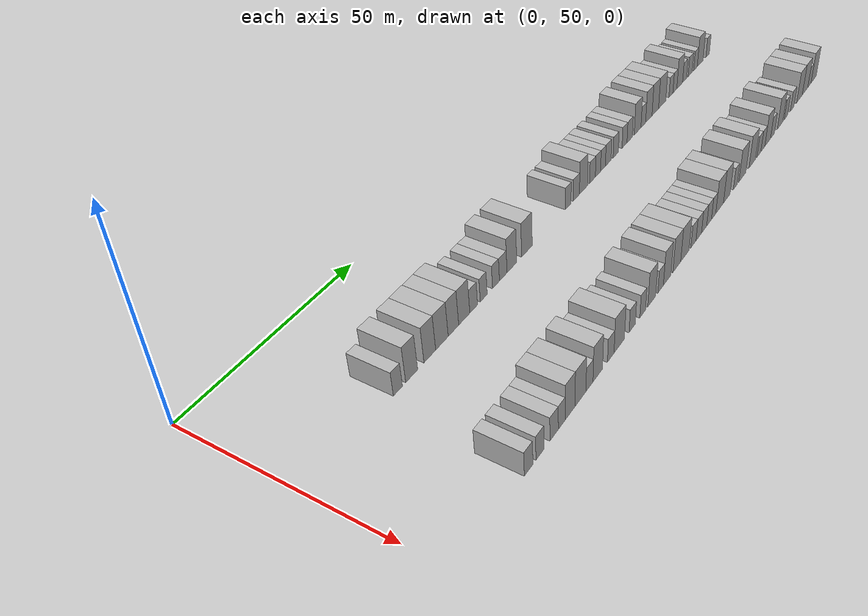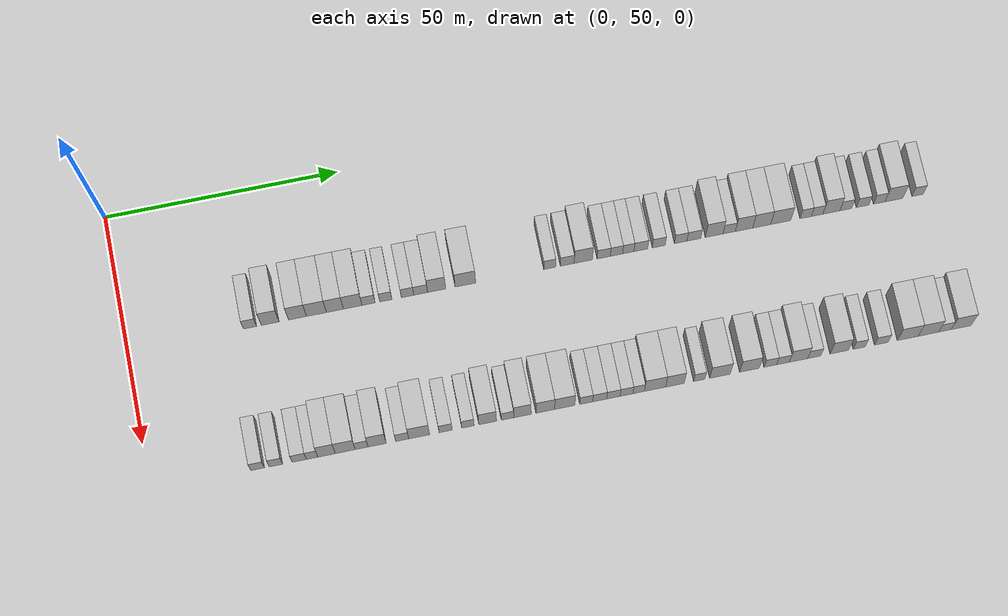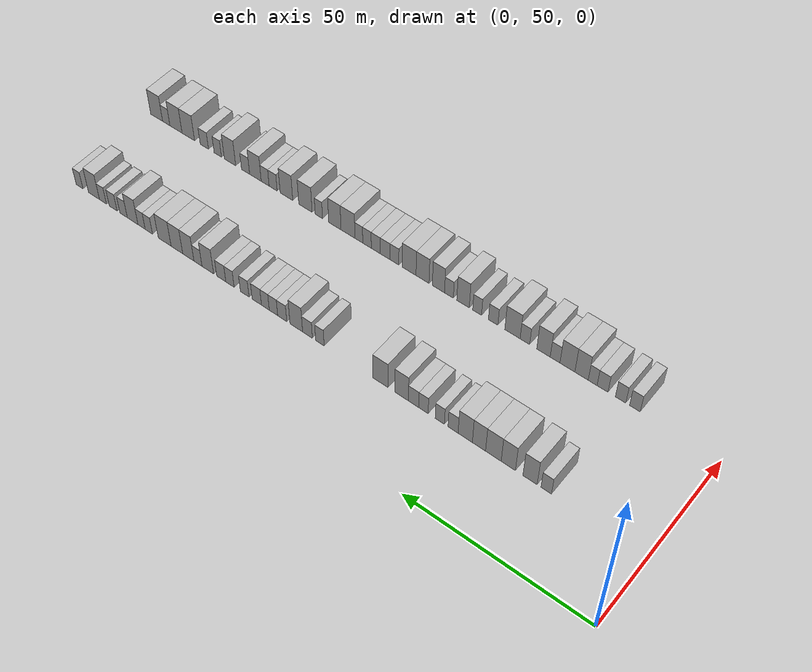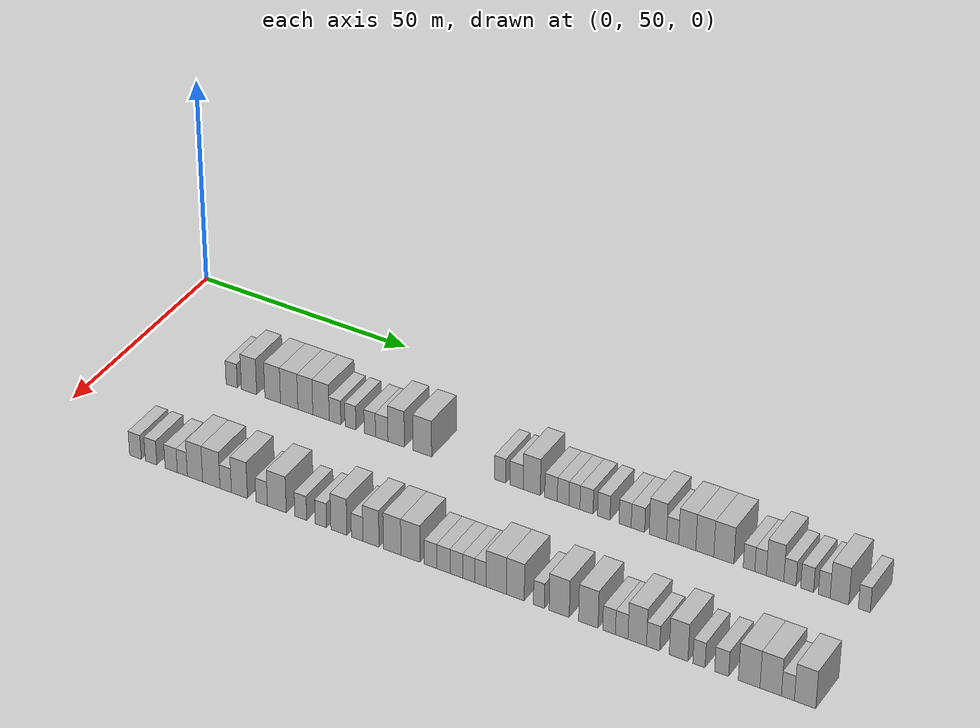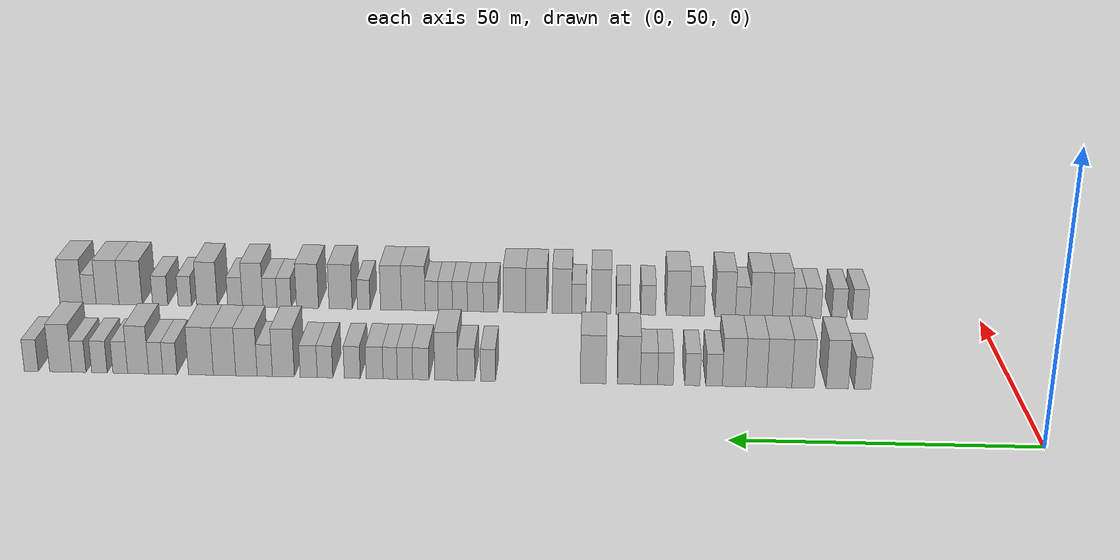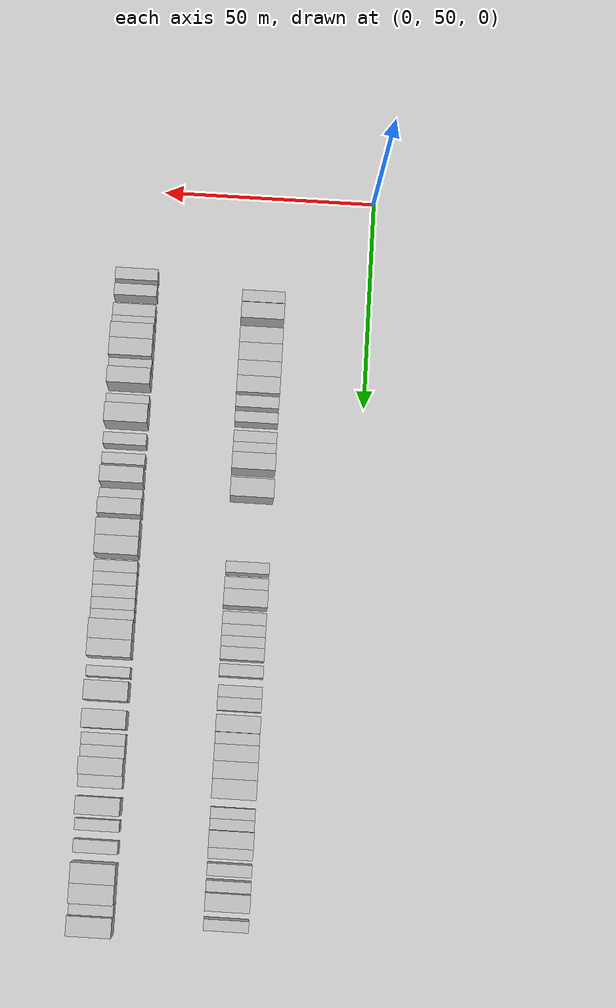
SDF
<sdf version="1.6">
 <world name="default">
  <model name="building_76">
   <static>1</static>
   <pose>25.0000 75.9710 0 0.000000 0.000000 0.000000</pose>
   <link name="link">
    <pose>0 0 3.00 0 0 0</pose>
    <collision name="collision"><geometry><box><size>10.0000 2.7708 6.0000</size></box></geometry></collision>
    <visual name="visual">
     <cast_shadows>0</cast_shadows>
     <geometry><box><size>10.0000 2.7708 6.0000</size></box></geometry>
     <material>
      <script>
       <uri>model://HANNAS_wall/materials/scripts</uri>
       <uri>model://HANNAS_wall/materials/textures</uri>
       <name>vrc/HANNAS_wall</name>
      </script>
     </material>
    </visual>
   </link>
  </model>
  <model name="building_77">
   <static>1</static>
   <pose>25.0000 80.2393 0 0.000000 0.000000 0.000000</pose>
   <link name="link">
    <pose>0 0 4.50 0 0 0</pose>
    <collision name="collision"><geometry><box><size>10.0000 3.7657 9.0000</size></box></geometry></collision>
    <visual name="visual">
     <cast_shadows>0</cast_shadows>
     <geometry><box><size>10.0000 3.7657 9.0000</size></box></geometry>
     <material>
      <script>
       <uri>model://HANNAS_wall/materials/scripts</uri>
       <uri>model://HANNAS_wall/materials/textures</uri>
       <name>vrc/HANNAS_wall</name>
      </script>
     </material>
    </visual>
   </link>
  </model>
  <model name="building_78">
   <static>1</static>
   <pose>25.0000 86.0371 0 0.000000 0.000000 0.000000</pose>
   <link name="link">
    <pose>0 0 4.50 0 0 0</pose>
    <collision name="collision"><geometry><box><size>10.0000 3.8299 9.0000</size></box></geometry></collision>
    <visual name="visual">
     <cast_shadows>0</cast_shadows>
     <geometry><box><size>10.0000 3.8299 9.0000</size></box></geometry>
     <material>
      <script>
       <uri>model://HANNAS_wall/materials/scripts</uri>
       <uri>model://HANNAS_wall/materials/textures</uri>
       <name>vrc/HANNAS_wall</name>
      </script>
     </material>
    </visual>
   </link>
  </model>
  <model name="building_79">
   <static>1</static>
   <pose>25.0000 90.0652 0 0.000000 0.000000 0.000000</pose>
   <link name="link">
    <pose>0 0 4.50 0 0 0</pose>
    <collision name="collision"><geometry><box><size>10.0000 4.2263 9.0000</size></box></geometry></collision>
    <visual name="visual">
     <cast_shadows>0</cast_shadows>
     <geometry><box><size>10.0000 4.2263 9.0000</size></box></geometry>
     <material>
      <script>
       <uri>model://HANNAS_wall/materials/scripts</uri>
       <uri>model://HANNAS_wall/materials/textures</uri>
       <name>vrc/HANNAS_wall</name>
      </script>
     </material>
    </visual>
   </link>
  </model>
  <model name="building_80">
   <static>1</static>
   <pose>25.0000 93.9865 0 0.000000 0.000000 0.000000</pose>
   <link name="link">
    <pose>0 0 4.50 0 0 0</pose>
    <collision name="collision"><geometry><box><size>10.0000 3.6165 9.0000</size></box></geometry></collision>
    <visual name="visual">
     <cast_shadows>0</cast_shadows>
     <geometry><box><size>10.0000 3.6165 9.0000</size></box></geometry>
     <material>
      <script>
       <uri>model://HANNAS_wall/materials/scripts</uri>
       <uri>model://HANNAS_wall/materials/textures</uri>
       <name>vrc/HANNAS_wall</name>
      </script>
     </material>
    </visual>
   </link>
  </model>
  <model name="building_81">
   <static>1</static>
   <pose>25.0000 97.7673 0 0.000000 0.000000 0.000000</pose>
   <link name="link">
    <pose>0 0 4.50 0 0 0</pose>
    <collision name="collision"><geometry><box><size>10.0000 3.9451 9.0000</size></box></geometry></collision>
    <visual name="visual">
     <cast_shadows>0</cast_shadows>
     <geometry><box><size>10.0000 3.9451 9.0000</size></box></geometry>
     <material>
      <script>
       <uri>model://HANNAS_wall/materials/scripts</uri>
       <uri>model://HANNAS_wall/materials/textures</uri>
       <name>vrc/HANNAS_wall</name>
      </script>
     </material>
    </visual>
   </link>
  </model>
  <model name="building_82">
   <static>1</static>
   <pose>25.0000 101.1397 0 0.000000 0.000000 0.000000</pose>
   <link name="link">
    <pose>0 0 3.00 0 0 0</pose>
    <collision name="collision"><geometry><box><size>10.0000 2.7997 6.0000</size></box></geometry></collision>
    <visual name="visual">
     <cast_shadows>0</cast_shadows>
     <geometry><box><size>10.0000 2.7997 6.0000</size></box></geometry>
     <material>
      <script>
       <uri>model://HANNAS_wall/materials/scripts</uri>
       <uri>model://HANNAS_wall/materials/textures</uri>
       <name>vrc/HANNAS_wall</name>
      </script>
     </material>
    </visual>
   </link>
  </model>
  <model name="building_83">
   <static>1</static>
   <pose>25.0000 104.8327 0 0.000000 0.000000 0.000000</pose>
   <link name="link">
    <pose>0 0 3.00 0 0 0</pose>
    <collision name="collision"><geometry><box><size>10.0000 2.5863 6.0000</size></box></geometry></collision>
    <visual name="visual">
     <cast_shadows>0</cast_shadows>
     <geometry><box><size>10.0000 2.5863 6.0000</size></box></geometry>
     <material>
      <script>
       <uri>model://HANNAS_wall/materials/scripts</uri>
       <uri>model://HANNAS_wall/materials/textures</uri>
       <name>vrc/HANNAS_wall</name>
      </script>
     </material>
    </visual>
   </link>
  </model>
  <model name="building_84">
   <static>1</static>
   <pose>25.0000 109.4549 0 0.000000 0.000000 0.000000</pose>
   <link name="link">
    <pose>0 0 3.00 0 0 0</pose>
    <collision name="collision"><geometry><box><size>10.0000 2.6581 6.0000</size></box></geometry></collision>
    <visual name="visual">
     <cast_shadows>0</cast_shadows>
     <geometry><box><size>10.0000 2.6581 6.0000</size></box></geometry>
     <material>
      <script>
       <uri>model://HANNAS_wall/materials/scripts</uri>
       <uri>model://HANNAS_wall/materials/textures</uri>
       <name>vrc/HANNAS_wall</name>
      </script>
     </material>
    </visual>
   </link>
  </model>
  <model name="building_85">
   <static>1</static>
   <pose>25.0000 112.2626 0 0.000000 0.000000 0.000000</pose>
   <link name="link">
    <pose>0 0 3.00 0 0 0</pose>
    <collision name="collision"><geometry><box><size>10.0000 2.9574 6.0000</size></box></geometry></collision>
    <visual name="visual">
     <cast_shadows>0</cast_shadows>
     <geometry><box><size>10.0000 2.9574 6.0000</size></box></geometry>
     <material>
      <script>
       <uri>model://HANNAS_wall/materials/scripts</uri>
       <uri>model://HANNAS_wall/materials/textures</uri>
       <name>vrc/HANNAS_wall</name>
      </script>
     </material>
    </visual>
   </link>
  </model>
  <model name="building_86">
   <static>1</static>
   <pose>25.0000 115.6789 0 0.000000 0.000000 0.000000</pose>
   <link name="link">
    <pose>0 0 4.50 0 0 0</pose>
    <collision name="collision"><geometry><box><size>10.0000 3.8751 9.0000</size></box></geometry></collision>
    <visual name="visual">
     <cast_shadows>0</cast_shadows>
     <geometry><box><size>10.0000 3.8751 9.0000</size></box></geometry>
     <material>
      <script>
       <uri>model://HANNAS_wall/materials/scripts</uri>
       <uri>model://HANNAS_wall/materials/textures</uri>
       <name>vrc/HANNAS_wall</name>
      </script>
     </material>
    </visual>
   </link>
  </model>
  <model name="building_87">
   <static>1</static>
   <pose>25.0000 121.8130 0 0.000000 0.000000 0.000000</pose>
   <link name="link">
    <pose>0 0 4.50 0 0 0</pose>
    <collision name="collision"><geometry><box><size>10.0000 4.3932 9.0000</size></box></geometry></collision>
    <visual name="visual">
     <cast_shadows>0</cast_shadows>
     <geometry><box><size>10.0000 4.3932 9.0000</size></box></geometry>
     <material>
      <script>
       <uri>model://HANNAS_wall/materials/scripts</uri>
       <uri>model://HANNAS_wall/materials/textures</uri>
       <name>vrc/HANNAS_wall</name>
      </script>
     </material>
    </visual>
   </link>
  </model>
  <model name="building_88">
   <static>1</static>
   <pose>25.0000 139.8758 0 0.000000 0.000000 0.000000</pose>
   <link name="link">
    <pose>0 0 3.00 0 0 0</pose>
    <collision name="collision"><geometry><box><size>10.0000 2.5774 6.0000</size></box></geometry></collision>
    <visual name="visual">
     <cast_shadows>0</cast_shadows>
     <geometry><box><size>10.0000 2.5774 6.0000</size></box></geometry>
     <material>
      <script>
       <uri>model://HANNAS_wall/materials/scripts</uri>
       <uri>model://HANNAS_wall/materials/textures</uri>
       <name>vrc/HANNAS_wall</name>
      </script>
     </material>
    </visual>
   </link>
  </model>
  <model name="building_89">
   <static>1</static>
   <pose>25.0000 143.6595 0 0.000000 0.000000 0.000000</pose>
   <link name="link">
    <pose>0 0 3.00 0 0 0</pose>
    <collision name="collision"><geometry><box><size>10.0000 2.9900 6.0000</size></box></geometry></collision>
    <visual name="visual">
     <cast_shadows>0</cast_shadows>
     <geometry><box><size>10.0000 2.9900 6.0000</size></box></geometry>
     <material>
      <script>
       <uri>model://HANNAS_wall/materials/scripts</uri>
       <uri>model://HANNAS_wall/materials/textures</uri>
       <name>vrc/HANNAS_wall</name>
      </script>
     </material>
    </visual>
   </link>
  </model>
  <model name="building_90">
   <static>1</static>
   <pose>25.0000 147.1095 0 0.000000 0.000000 0.000000</pose>
   <link name="link">
    <pose>0 0 4.50 0 0 0</pose>
    <collision name="collision"><geometry><box><size>10.0000 3.9099 9.0000</size></box></geometry></collision>
    <visual name="visual">
     <cast_shadows>0</cast_shadows>
     <geometry><box><size>10.0000 3.9099 9.0000</size></box></geometry>
     <material>
      <script>
       <uri>model://HANNAS_wall/materials/scripts</uri>
       <uri>model://HANNAS_wall/materials/textures</uri>
       <name>vrc/HANNAS_wall</name>
      </script>
     </material>
    </visual>
   </link>
  </model>
  <model name="building_91">
   <static>1</static>
   <pose>25.0000 151.4833 0 0.000000 0.000000 0.000000</pose>
   <link name="link">
    <pose>0 0 3.00 0 0 0</pose>
    <collision name="collision"><geometry><box><size>10.0000 2.8377 6.0000</size></box></geometry></collision>
    <visual name="visual">
     <cast_shadows>0</cast_shadows>
     <geometry><box><size>10.0000 2.8377 6.0000</size></box></geometry>
     <material>
      <script>
       <uri>model://HANNAS_wall/materials/scripts</uri>
       <uri>model://HANNAS_wall/materials/textures</uri>
       <name>vrc/HANNAS_wall</name>
      </script>
     </material>
    </visual>
   </link>
  </model>
  <model name="building_92">
   <static>1</static>
   <pose>25.0000 154.2225 0 0.000000 0.000000 0.000000</pose>
   <link name="link">
    <pose>0 0 3.00 0 0 0</pose>
    <collision name="collision"><geometry><box><size>10.0000 2.6409 6.0000</size></box></geometry></collision>
    <visual name="visual">
     <cast_shadows>0</cast_shadows>
     <geometry><box><size>10.0000 2.6409 6.0000</size></box></geometry>
     <material>
      <script>
       <uri>model://HANNAS_wall/materials/scripts</uri>
       <uri>model://HANNAS_wall/materials/textures</uri>
       <name>vrc/HANNAS_wall</name>
      </script>
     </material>
    </visual>
   </link>
  </model>
  <model name="building_93">
   <static>1</static>
   <pose>25.0000 156.7780 0 0.000000 0.000000 0.000000</pose>
   <link name="link">
    <pose>0 0 3.00 0 0 0</pose>
    <collision name="collision"><geometry><box><size>10.0000 2.4701 6.0000</size></box></geometry></collision>
    <visual name="visual">
     <cast_shadows>0</cast_shadows>
     <geometry><box><size>10.0000 2.4701 6.0000</size></box></geometry>
     <material>
      <script>
       <uri>model://HANNAS_wall/materials/scripts</uri>
       <uri>model://HANNAS_wall/materials/textures</uri>
       <name>vrc/HANNAS_wall</name>
      </script>
     </material>
    </visual>
   </link>
  </model>
  <model name="building_94">
   <static>1</static>
   <pose>25.0000 159.4873 0 0.000000 0.000000 0.000000</pose>
   <link name="link">
    <pose>0 0 3.00 0 0 0</pose>
    <collision name="collision"><geometry><box><size>10.0000 2.9485 6.0000</size></box></geometry></collision>
    <visual name="visual">
     <cast_shadows>0</cast_shadows>
     <geometry><box><size>10.0000 2.9485 6.0000</size></box></geometry>
     <material>
      <script>
       <uri>model://HANNAS_wall/materials/scripts</uri>
       <uri>model://HANNAS_wall/materials/textures</uri>
       <name>vrc/HANNAS_wall</name>
      </script>
     </material>
    </visual>
   </link>
  </model>
  <model name="building_95">
   <static>1</static>
   <pose>25.0000 163.3508 0 0.000000 0.000000 0.000000</pose>
   <link name="link">
    <pose>0 0 3.00 0 0 0</pose>
    <collision name="collision"><geometry><box><size>10.0000 2.7786 6.0000</size></box></geometry></collision>
    <visual name="visual">
     <cast_shadows>0</cast_shadows>
     <geometry><box><size>10.0000 2.7786 6.0000</size></box></geometry>
     <material>
      <script>
       <uri>model://HANNAS_wall/materials/scripts</uri>
       <uri>model://HANNAS_wall/materials/textures</uri>
       <name>vrc/HANNAS_wall</name>
      </script>
     </material>
    </visual>
   </link>
  </model>
  <model name="building_96">
   <static>1</static>
   <pose>25.0000 168.0910 0 0.000000 0.000000 0.000000</pose>
   <link name="link">
    <pose>0 0 3.00 0 0 0</pose>
    <collision name="collision"><geometry><box><size>10.0000 2.7019 6.0000</size></box></geometry></collision>
    <visual name="visual">
     <cast_shadows>0</cast_shadows>
     <geometry><box><size>10.0000 2.7019 6.0000</size></box></geometry>
     <material>
      <script>
       <uri>model://HANNAS_wall/materials/scripts</uri>
       <uri>model://HANNAS_wall/materials/textures</uri>
       <name>vrc/HANNAS_wall</name>
      </script>
     </material>
    </visual>
   </link>
  </model>
  <model name="building_97">
   <static>1</static>
   <pose>25.0000 170.9307 0 0.000000 0.000000 0.000000</pose>
   <link name="link">
    <pose>0 0 3.00 0 0 0</pose>
    <collision name="collision"><geometry><box><size>10.0000 2.9776 6.0000</size></box></geometry></collision>
    <visual name="visual">
     <cast_shadows>0</cast_shadows>
     <geometry><box><size>10.0000 2.9776 6.0000</size></box></geometry>
     <material>
      <script>
       <uri>model://HANNAS_wall/materials/scripts</uri>
       <uri>model://HANNAS_wall/materials/textures</uri>
       <name>vrc/HANNAS_wall</name>
      </script>
     </material>
    </visual>
   </link>
  </model>
  <model name="building_98">
   <static>1</static>
   <pose>25.0000 175.3332 0 0.000000 0.000000 0.000000</pose>
   <link name="link">
    <pose>0 0 4.50 0 0 0</pose>
    <collision name="collision"><geometry><box><size>10.0000 3.8273 9.0000</size></box></geometry></collision>
    <visual name="visual">
     <cast_shadows>0</cast_shadows>
     <geometry><box><size>10.0000 3.8273 9.0000</size></box></geometry>
     <material>
      <script>
       <uri>model://HANNAS_wall/materials/scripts</uri>
       <uri>model://HANNAS_wall/materials/textures</uri>
       <name>vrc/HANNAS_wall</name>
      </script>
     </material>
    </visual>
   </link>
  </model>
  <model name="building_99">
   <static>1</static>
   <pose>25.0000 178.5774 0 0.000000 0.000000 0.000000</pose>
   <link name="link">
    <pose>0 0 3.00 0 0 0</pose>
    <collision name="collision"><geometry><box><size>10.0000 2.6610 6.0000</size></box></geometry></collision>
    <visual name="visual">
     <cast_shadows>0</cast_shadows>
     <geometry><box><size>10.0000 2.6610 6.0000</size></box></geometry>
     <material>
      <script>
       <uri>model://HANNAS_wall/materials/scripts</uri>
       <uri>model://HANNAS_wall/materials/textures</uri>
       <name>vrc/HANNAS_wall</name>
      </script>
     </material>
    </visual>
   </link>
  </model>
  <model name="building_100">
   <static>1</static>
   <pose>25.0000 181.7789 0 0.000000 0.000000 0.000000</pose>
   <link name="link">
    <pose>0 0 4.50 0 0 0</pose>
    <collision name="collision"><geometry><box><size>10.0000 3.7421 9.0000</size></box></geometry></collision>
    <visual name="visual">
     <cast_shadows>0</cast_shadows>
     <geometry><box><size>10.0000 3.7421 9.0000</size></box></geometry>
     <material>
      <script>
       <uri>model://HANNAS_wall/materials/scripts</uri>
       <uri>model://HANNAS_wall/materials/textures</uri>
       <name>vrc/HANNAS_wall</name>
      </script>
     </material>
    </visual>
   </link>
  </model>
  <model name="building_101">
   <static>1</static>
   <pose>25.0000 185.6062 0 0.000000 0.000000 0.000000</pose>
   <link name="link">
    <pose>0 0 4.50 0 0 0</pose>
    <collision name="collision"><geometry><box><size>10.0000 3.9123 9.0000</size></box></geometry></collision>
    <visual name="visual">
     <cast_shadows>0</cast_shadows>
     <geometry><box><size>10.0000 3.9123 9.0000</size></box></geometry>
     <material>
      <script>
       <uri>model://HANNAS_wall/materials/scripts</uri>
       <uri>model://HANNAS_wall/materials/textures</uri>
       <name>vrc/HANNAS_wall</name>
      </script>
     </material>
    </visual>
   </link>
  </model>
  <model name="building_102">
   <static>1</static>
   <pose>25.0000 189.7421 0 0.000000 0.000000 0.000000</pose>
   <link name="link">
    <pose>0 0 4.50 0 0 0</pose>
    <collision name="collision"><geometry><box><size>10.0000 4.3595 9.0000</size></box></geometry></collision>
    <visual name="visual">
     <cast_shadows>0</cast_shadows>
     <geometry><box><size>10.0000 4.3595 9.0000</size></box></geometry>
     <material>
      <script>
       <uri>model://HANNAS_wall/materials/scripts</uri>
       <uri>model://HANNAS_wall/materials/textures</uri>
       <name>vrc/HANNAS_wall</name>
      </script>
     </material>
    </visual>
   </link>
  </model>
  <model name="building_103">
   <static>1</static>
   <pose>25.0000 195.1657 0 0.000000 0.000000 0.000000</pose>
   <link name="link">
    <pose>0 0 3.00 0 0 0</pose>
    <collision name="collision"><geometry><box><size>10.0000 2.4878 6.0000</size></box></geometry></collision>
    <visual name="visual">
     <cast_shadows>0</cast_shadows>
     <geometry><box><size>10.0000 2.4878 6.0000</size></box></geometry>
     <material>
      <script>
       <uri>model://HANNAS_wall/materials/scripts</uri>
       <uri>model://HANNAS_wall/materials/textures</uri>
       <name>vrc/HANNAS_wall</name>
      </script>
     </material>
    </visual>
   </link>
  </model>
  <model name="building_104">
   <static>1</static>
   <pose>25.0000 197.6542 0 0.000000 0.000000 0.000000</pose>
   <link name="link">
    <pose>0 0 3.00 0 0 0</pose>
    <collision name="collision"><geometry><box><size>10.0000 2.4891 6.0000</size></box></geometry></collision>
    <visual name="visual">
     <cast_shadows>0</cast_shadows>
     <geometry><box><size>10.0000 2.4891 6.0000</size></box></geometry>
     <material>
      <script>
       <uri>model://HANNAS_wall/materials/scripts</uri>
       <uri>model://HANNAS_wall/materials/textures</uri>
       <name>vrc/HANNAS_wall</name>
      </script>
     </material>
    </visual>
   </link>
  </model>
  <model name="building_105">
   <static>1</static>
   <pose>25.0000 200.7503 0 0.000000 0.000000 0.000000</pose>
   <link name="link">
    <pose>0 0 4.50 0 0 0</pose>
    <collision name="collision"><geometry><box><size>10.0000 3.7031 9.0000</size></box></geometry></collision>
    <visual name="visual">
     <cast_shadows>0</cast_shadows>
     <geometry><box><size>10.0000 3.7031 9.0000</size></box></geometry>
     <material>
      <script>
       <uri>model://HANNAS_wall/materials/scripts</uri>
       <uri>model://HANNAS_wall/materials/textures</uri>
       <name>vrc/HANNAS_wall</name>
      </script>
     </material>
    </visual>
   </link>
  </model>
  <model name="building_106">
   <static>1</static>
   <pose>25.0000 203.8945 0 0.000000 0.000000 0.000000</pose>
   <link name="link">
    <pose>0 0 3.00 0 0 0</pose>
    <collision name="collision"><geometry><box><size>10.0000 2.5854 6.0000</size></box></geometry></collision>
    <visual name="visual">
     <cast_shadows>0</cast_shadows>
     <geometry><box><size>10.0000 2.5854 6.0000</size></box></geometry>
     <material>
      <script>
       <uri>model://HANNAS_wall/materials/scripts</uri>
       <uri>model://HANNAS_wall/materials/textures</uri>
       <name>vrc/HANNAS_wall</name>
      </script>
     </material>
    </visual>
   </link>
  </model>
  <model name="building_107">
   <static>1</static>
   <pose>25.0000 207.5575 0 0.000000 0.000000 0.000000</pose>
   <link name="link">
    <pose>0 0 3.00 0 0 0</pose>
    <collision name="collision"><geometry><box><size>10.0000 2.7405 6.0000</size></box></geometry></collision>
    <visual name="visual">
     <cast_shadows>0</cast_shadows>
     <geometry><box><size>10.0000 2.7405 6.0000</size></box></geometry>
     <material>
      <script>
       <uri>model://HANNAS_wall/materials/scripts</uri>
       <uri>model://HANNAS_wall/materials/textures</uri>
       <name>vrc/HANNAS_wall</name>
      </script>
     </material>
    </visual>
   </link>
  </model>
  <model name="building_108">
   <static>1</static>
   <pose>25.0000 211.1710 0 0.000000 0.000000 0.000000</pose>
   <link name="link">
    <pose>0 0 3.00 0 0 0</pose>
    <collision name="collision"><geometry><box><size>10.0000 2.4865 6.0000</size></box></geometry></collision>
    <visual name="visual">
     <cast_shadows>0</cast_shadows>
     <geometry><box><size>10.0000 2.4865 6.0000</size></box></geometry>
     <material>
      <script>
       <uri>model://HANNAS_wall/materials/scripts</uri>
       <uri>model://HANNAS_wall/materials/textures</uri>
       <name>vrc/HANNAS_wall</name>
      </script>
     </material>
    </visual>
   </link>
  </model>
  <model name="building_109">
   <static>1</static>
   <pose>25.0000 214.3712 0 0.000000 0.000000 0.000000</pose>
   <link name="link">
    <pose>0 0 4.50 0 0 0</pose>
    <collision name="collision"><geometry><box><size>10.0000 3.9139 9.0000</size></box></geometry></collision>
    <visual name="visual">
     <cast_shadows>0</cast_shadows>
     <geometry><box><size>10.0000 3.9139 9.0000</size></box></geometry>
     <material>
      <script>
       <uri>model://HANNAS_wall/materials/scripts</uri>
       <uri>model://HANNAS_wall/materials/textures</uri>
       <name>vrc/HANNAS_wall</name>
      </script>
     </material>
    </visual>
   </link>
  </model>
  <model name="building_110">
   <static>1</static>
   <pose>25.0000 219.5664 0 0.000000 0.000000 0.000000</pose>
   <link name="link">
    <pose>0 0 3.00 0 0 0</pose>
    <collision name="collision"><geometry><box><size>10.0000 2.4767 6.0000</size></box></geometry></collision>
    <visual name="visual">
     <cast_shadows>0</cast_shadows>
     <geometry><box><size>10.0000 2.4767 6.0000</size></box></geometry>
     <material>
      <script>
       <uri>model://HANNAS_wall/materials/scripts</uri>
       <uri>model://HANNAS_wall/materials/textures</uri>
       <name>vrc/HANNAS_wall</name>
      </script>
     </material>
    </visual>
   </link>
  </model>
  <model name="building_182">
   <static>1</static>
   <pose>55.0000 72.3628 0 0.000000 0.000000 0.000000</pose>
   <link name="link">
    <pose>0 0 3.00 0 0 0</pose>
    <collision name="collision"><geometry><box><size>10.0000 2.8321 6.0000</size></box></geometry></collision>
    <visual name="visual">
     <cast_shadows>0</cast_shadows>
     <geometry><box><size>10.0000 2.8321 6.0000</size></box></geometry>
     <material>
      <script>
       <uri>model://HANNAS_wall/materials/scripts</uri>
       <uri>model://HANNAS_wall/materials/textures</uri>
       <name>vrc/HANNAS_wall</name>
      </script>
     </material>
    </visual>
   </link>
  </model>
  <model name="building_183">
   <static>1</static>
   <pose>55.0000 76.1702 0 0.000000 0.000000 0.000000</pose>
   <link name="link">
    <pose>0 0 3.00 0 0 0</pose>
    <collision name="collision"><geometry><box><size>10.0000 2.7827 6.0000</size></box></geometry></collision>
    <visual name="visual">
     <cast_shadows>0</cast_shadows>
     <geometry><box><size>10.0000 2.7827 6.0000</size></box></geometry>
     <material>
      <script>
       <uri>model://HANNAS_wall/materials/scripts</uri>
       <uri>model://HANNAS_wall/materials/textures</uri>
       <name>vrc/HANNAS_wall</name>
      </script>
     </material>
    </visual>
   </link>
  </model>
  <model name="building_184">
   <static>1</static>
   <pose>55.0000 81.0373 0 0.000000 0.000000 0.000000</pose>
   <link name="link">
    <pose>0 0 3.00 0 0 0</pose>
    <collision name="collision"><geometry><box><size>10.0000 2.9517 6.0000</size></box></geometry></collision>
    <visual name="visual">
     <cast_shadows>0</cast_shadows>
     <geometry><box><size>10.0000 2.9517 6.0000</size></box></geometry>
     <material>
      <script>
       <uri>model://HANNAS_wall/materials/scripts</uri>
       <uri>model://HANNAS_wall/materials/textures</uri>
       <name>vrc/HANNAS_wall</name>
      </script>
     </material>
    </visual>
   </link>
  </model>
  <model name="building_185">
   <static>1</static>
   <pose>55.0000 83.7175 0 0.000000 0.000000 0.000000</pose>
   <link name="link">
    <pose>0 0 3.00 0 0 0</pose>
    <collision name="collision"><geometry><box><size>10.0000 2.4085 6.0000</size></box></geometry></collision>
    <visual name="visual">
     <cast_shadows>0</cast_shadows>
     <geometry><box><size>10.0000 2.4085 6.0000</size></box></geometry>
     <material>
      <script>
       <uri>model://HANNAS_wall/materials/scripts</uri>
       <uri>model://HANNAS_wall/materials/textures</uri>
       <name>vrc/HANNAS_wall</name>
      </script>
     </material>
    </visual>
   </link>
  </model>
  <model name="building_186">
   <static>1</static>
   <pose>55.0000 86.7579 0 0.000000 0.000000 0.000000</pose>
   <link name="link">
    <pose>0 0 4.50 0 0 0</pose>
    <collision name="collision"><geometry><box><size>10.0000 3.6724 9.0000</size></box></geometry></collision>
    <visual name="visual">
     <cast_shadows>0</cast_shadows>
     <geometry><box><size>10.0000 3.6724 9.0000</size></box></geometry>
     <material>
      <script>
       <uri>model://HANNAS_wall/materials/scripts</uri>
       <uri>model://HANNAS_wall/materials/textures</uri>
       <name>vrc/HANNAS_wall</name>
      </script>
     </material>
    </visual>
   </link>
  </model>
  <model name="building_187">
   <static>1</static>
   <pose>55.0000 90.6618 0 0.000000 0.000000 0.000000</pose>
   <link name="link">
    <pose>0 0 4.50 0 0 0</pose>
    <collision name="collision"><geometry><box><size>10.0000 4.1354 9.0000</size></box></geometry></collision>
    <visual name="visual">
     <cast_shadows>0</cast_shadows>
     <geometry><box><size>10.0000 4.1354 9.0000</size></box></geometry>
     <material>
      <script>
       <uri>model://HANNAS_wall/materials/scripts</uri>
       <uri>model://HANNAS_wall/materials/textures</uri>
       <name>vrc/HANNAS_wall</name>
      </script>
     </material>
    </visual>
   </link>
  </model>
  <model name="building_188">
   <static>1</static>
   <pose>55.0000 94.0887 0 0.000000 0.000000 0.000000</pose>
   <link name="link">
    <pose>0 0 3.00 0 0 0</pose>
    <collision name="collision"><geometry><box><size>10.0000 2.7184 6.0000</size></box></geometry></collision>
    <visual name="visual">
     <cast_shadows>0</cast_shadows>
     <geometry><box><size>10.0000 2.7184 6.0000</size></box></geometry>
     <material>
      <script>
       <uri>model://HANNAS_wall/materials/scripts</uri>
       <uri>model://HANNAS_wall/materials/textures</uri>
       <name>vrc/HANNAS_wall</name>
      </script>
     </material>
    </visual>
   </link>
  </model>
  <model name="building_189">
   <static>1</static>
   <pose>55.0000 97.3417 0 0.000000 0.000000 0.000000</pose>
   <link name="link">
    <pose>0 0 4.50 0 0 0</pose>
    <collision name="collision"><geometry><box><size>10.0000 3.7876 9.0000</size></box></geometry></collision>
    <visual name="visual">
     <cast_shadows>0</cast_shadows>
     <geometry><box><size>10.0000 3.7876 9.0000</size></box></geometry>
     <material>
      <script>
       <uri>model://HANNAS_wall/materials/scripts</uri>
       <uri>model://HANNAS_wall/materials/textures</uri>
       <name>vrc/HANNAS_wall</name>
      </script>
     </material>
    </visual>
   </link>
  </model>
  <model name="building_190">
   <static>1</static>
   <pose>55.0000 102.5923 0 0.000000 0.000000 0.000000</pose>
   <link name="link">
    <pose>0 0 3.00 0 0 0</pose>
    <collision name="collision"><geometry><box><size>10.0000 2.7136 6.0000</size></box></geometry></collision>
    <visual name="visual">
     <cast_shadows>0</cast_shadows>
     <geometry><box><size>10.0000 2.7136 6.0000</size></box></geometry>
     <material>
      <script>
       <uri>model://HANNAS_wall/materials/scripts</uri>
       <uri>model://HANNAS_wall/materials/textures</uri>
       <name>vrc/HANNAS_wall</name>
      </script>
     </material>
    </visual>
   </link>
  </model>
  <model name="building_191">
   <static>1</static>
   <pose>55.0000 106.1489 0 0.000000 0.000000 0.000000</pose>
   <link name="link">
    <pose>0 0 4.50 0 0 0</pose>
    <collision name="collision"><geometry><box><size>10.0000 4.3995 9.0000</size></box></geometry></collision>
    <visual name="visual">
     <cast_shadows>0</cast_shadows>
     <geometry><box><size>10.0000 4.3995 9.0000</size></box></geometry>
     <material>
      <script>
       <uri>model://HANNAS_wall/materials/scripts</uri>
       <uri>model://HANNAS_wall/materials/textures</uri>
       <name>vrc/HANNAS_wall</name>
      </script>
     </material>
    </visual>
   </link>
  </model>
  <model name="building_192">
   <static>1</static>
   <pose>55.0000 111.7252 0 0.000000 0.000000 0.000000</pose>
   <link name="link">
    <pose>0 0 3.00 0 0 0</pose>
    <collision name="collision"><geometry><box><size>10.0000 2.7531 6.0000</size></box></geometry></collision>
    <visual name="visual">
     <cast_shadows>0</cast_shadows>
     <geometry><box><size>10.0000 2.7531 6.0000</size></box></geometry>
     <material>
      <script>
       <uri>model://HANNAS_wall/materials/scripts</uri>
       <uri>model://HANNAS_wall/materials/textures</uri>
       <name>vrc/HANNAS_wall</name>
      </script>
     </material>
    </visual>
   </link>
  </model>
  <model name="building_193">
   <static>1</static>
   <pose>55.0000 116.4030 0 0.000000 0.000000 0.000000</pose>
   <link name="link">
    <pose>0 0 3.00 0 0 0</pose>
    <collision name="collision"><geometry><box><size>10.0000 2.6025 6.0000</size></box></geometry></collision>
    <visual name="visual">
     <cast_shadows>0</cast_shadows>
     <geometry><box><size>10.0000 2.6025 6.0000</size></box></geometry>
     <material>
      <script>
       <uri>model://HANNAS_wall/materials/scripts</uri>
       <uri>model://HANNAS_wall/materials/textures</uri>
       <name>vrc/HANNAS_wall</name>
      </script>
     </material>
    </visual>
   </link>
  </model>
  <model name="building_194">
   <static>1</static>
   <pose>55.0000 120.5612 0 0.000000 0.000000 0.000000</pose>
   <link name="link">
    <pose>0 0 4.50 0 0 0</pose>
    <collision name="collision"><geometry><box><size>10.0000 3.7141 9.0000</size></box></geometry></collision>
    <visual name="visual">
     <cast_shadows>0</cast_shadows>
     <geometry><box><size>10.0000 3.7141 9.0000</size></box></geometry>
     <material>
      <script>
       <uri>model://HANNAS_wall/materials/scripts</uri>
       <uri>model://HANNAS_wall/materials/textures</uri>
       <name>vrc/HANNAS_wall</name>
      </script>
     </material>
    </visual>
   </link>
  </model>
  <model name="building_195">
   <static>1</static>
   <pose>55.0000 124.7460 0 0.000000 0.000000 0.000000</pose>
   <link name="link">
    <pose>0 0 3.00 0 0 0</pose>
    <collision name="collision"><geometry><box><size>10.0000 2.6554 6.0000</size></box></geometry></collision>
    <visual name="visual">
     <cast_shadows>0</cast_shadows>
     <geometry><box><size>10.0000 2.6554 6.0000</size></box></geometry>
     <material>
      <script>
       <uri>model://HANNAS_wall/materials/scripts</uri>
       <uri>model://HANNAS_wall/materials/textures</uri>
       <name>vrc/HANNAS_wall</name>
      </script>
     </material>
    </visual>
   </link>
  </model>
  <model name="building_196">
   <static>1</static>
   <pose>55.0000 127.9061 0 0.000000 0.000000 0.000000</pose>
   <link name="link">
    <pose>0 0 4.50 0 0 0</pose>
    <collision name="collision"><geometry><box><size>10.0000 3.6649 9.0000</size></box></geometry></collision>
    <visual name="visual">
     <cast_shadows>0</cast_shadows>
     <geometry><box><size>10.0000 3.6649 9.0000</size></box></geometry>
     <material>
      <script>
       <uri>model://HANNAS_wall/materials/scripts</uri>
       <uri>model://HANNAS_wall/materials/textures</uri>
       <name>vrc/HANNAS_wall</name>
      </script>
     </material>
    </visual>
   </link>
  </model>
  <model name="building_197">
   <static>1</static>
   <pose>55.0000 132.7168 0 0.000000 0.000000 0.000000</pose>
   <link name="link">
    <pose>0 0 4.50 0 0 0</pose>
    <collision name="collision"><geometry><box><size>10.0000 3.9564 9.0000</size></box></geometry></collision>
    <visual name="visual">
     <cast_shadows>0</cast_shadows>
     <geometry><box><size>10.0000 3.9564 9.0000</size></box></geometry>
     <material>
      <script>
       <uri>model://HANNAS_wall/materials/scripts</uri>
       <uri>model://HANNAS_wall/materials/textures</uri>
       <name>vrc/HANNAS_wall</name>
      </script>
     </material>
    </visual>
   </link>
  </model>
  <model name="building_198">
   <static>1</static>
   <pose>55.0000 136.8385 0 0.000000 0.000000 0.000000</pose>
   <link name="link">
    <pose>0 0 4.50 0 0 0</pose>
    <collision name="collision"><geometry><box><size>10.0000 4.2870 9.0000</size></box></geometry></collision>
    <visual name="visual">
     <cast_shadows>0</cast_shadows>
     <geometry><box><size>10.0000 4.2870 9.0000</size></box></geometry>
     <material>
      <script>
       <uri>model://HANNAS_wall/materials/scripts</uri>
       <uri>model://HANNAS_wall/materials/textures</uri>
       <name>vrc/HANNAS_wall</name>
      </script>
     </material>
    </visual>
   </link>
  </model>
  <model name="building_199">
   <static>1</static>
   <pose>55.0000 141.3545 0 0.000000 0.000000 0.000000</pose>
   <link name="link">
    <pose>0 0 3.00 0 0 0</pose>
    <collision name="collision"><geometry><box><size>10.0000 2.7450 6.0000</size></box></geometry></collision>
    <visual name="visual">
     <cast_shadows>0</cast_shadows>
     <geometry><box><size>10.0000 2.7450 6.0000</size></box></geometry>
     <material>
      <script>
       <uri>model://HANNAS_wall/materials/scripts</uri>
       <uri>model://HANNAS_wall/materials/textures</uri>
       <name>vrc/HANNAS_wall</name>
      </script>
     </material>
    </visual>
   </link>
  </model>
  <model name="building_200">
   <static>1</static>
   <pose>55.0000 144.2166 0 0.000000 0.000000 0.000000</pose>
   <link name="link">
    <pose>0 0 3.00 0 0 0</pose>
    <collision name="collision"><geometry><box><size>10.0000 2.9793 6.0000</size></box></geometry></collision>
    <visual name="visual">
     <cast_shadows>0</cast_shadows>
     <geometry><box><size>10.0000 2.9793 6.0000</size></box></geometry>
     <material>
      <script>
       <uri>model://HANNAS_wall/materials/scripts</uri>
       <uri>model://HANNAS_wall/materials/textures</uri>
       <name>vrc/HANNAS_wall</name>
      </script>
     </material>
    </visual>
   </link>
  </model>
  <model name="building_201">
   <static>1</static>
   <pose>55.0000 147.1307 0 0.000000 0.000000 0.000000</pose>
   <link name="link">
    <pose>0 0 3.00 0 0 0</pose>
    <collision name="collision"><geometry><box><size>10.0000 2.8490 6.0000</size></box></geometry></collision>
    <visual name="visual">
     <cast_shadows>0</cast_shadows>
     <geometry><box><size>10.0000 2.8490 6.0000</size></box></geometry>
     <material>
      <script>
       <uri>model://HANNAS_wall/materials/scripts</uri>
       <uri>model://HANNAS_wall/materials/textures</uri>
       <name>vrc/HANNAS_wall</name>
      </script>
     </material>
    </visual>
   </link>
  </model>
  <model name="building_202">
   <static>1</static>
   <pose>55.0000 149.9046 0 0.000000 0.000000 0.000000</pose>
   <link name="link">
    <pose>0 0 3.00 0 0 0</pose>
    <collision name="collision"><geometry><box><size>10.0000 2.6988 6.0000</size></box></geometry></collision>
    <visual name="visual">
     <cast_shadows>0</cast_shadows>
     <geometry><box><size>10.0000 2.6988 6.0000</size></box></geometry>
     <material>
      <script>
       <uri>model://HANNAS_wall/materials/scripts</uri>
       <uri>model://HANNAS_wall/materials/textures</uri>
       <name>vrc/HANNAS_wall</name>
      </script>
     </material>
    </visual>
   </link>
  </model>
  <model name="building_203">
   <static>1</static>
   <pose>55.0000 152.4811 0 0.000000 0.000000 0.000000</pose>
   <link name="link">
    <pose>0 0 3.00 0 0 0</pose>
    <collision name="collision"><geometry><box><size>10.0000 2.4540 6.0000</size></box></geometry></collision>
    <visual name="visual">
     <cast_shadows>0</cast_shadows>
     <geometry><box><size>10.0000 2.4540 6.0000</size></box></geometry>
     <material>
      <script>
       <uri>model://HANNAS_wall/materials/scripts</uri>
       <uri>model://HANNAS_wall/materials/textures</uri>
       <name>vrc/HANNAS_wall</name>
      </script>
     </material>
    </visual>
   </link>
  </model>
  <model name="building_204">
   <static>1</static>
   <pose>55.0000 155.9475 0 0.000000 0.000000 0.000000</pose>
   <link name="link">
    <pose>0 0 4.50 0 0 0</pose>
    <collision name="collision"><geometry><box><size>10.0000 4.4788 9.0000</size></box></geometry></collision>
    <visual name="visual">
     <cast_shadows>0</cast_shadows>
     <geometry><box><size>10.0000 4.4788 9.0000</size></box></geometry>
     <material>
      <script>
       <uri>model://HANNAS_wall/materials/scripts</uri>
       <uri>model://HANNAS_wall/materials/textures</uri>
       <name>vrc/HANNAS_wall</name>
      </script>
     </material>
    </visual>
   </link>
  </model>
  <model name="building_205">
   <static>1</static>
   <pose>55.0000 160.1672 0 0.000000 0.000000 0.000000</pose>
   <link name="link">
    <pose>0 0 4.50 0 0 0</pose>
    <collision name="collision"><geometry><box><size>10.0000 3.9606 9.0000</size></box></geometry></collision>
    <visual name="visual">
     <cast_shadows>0</cast_shadows>
     <geometry><box><size>10.0000 3.9606 9.0000</size></box></geometry>
     <material>
      <script>
       <uri>model://HANNAS_wall/materials/scripts</uri>
       <uri>model://HANNAS_wall/materials/textures</uri>
       <name>vrc/HANNAS_wall</name>
      </script>
     </material>
    </visual>
   </link>
  </model>
  <model name="building_206">
   <static>1</static>
   <pose>55.0000 165.3504 0 0.000000 0.000000 0.000000</pose>
   <link name="link">
    <pose>0 0 3.00 0 0 0</pose>
    <collision name="collision"><geometry><box><size>10.0000 2.4058 6.0000</size></box></geometry></collision>
    <visual name="visual">
     <cast_shadows>0</cast_shadows>
     <geometry><box><size>10.0000 2.4058 6.0000</size></box></geometry>
     <material>
      <script>
       <uri>model://HANNAS_wall/materials/scripts</uri>
       <uri>model://HANNAS_wall/materials/textures</uri>
       <name>vrc/HANNAS_wall</name>
      </script>
     </material>
    </visual>
   </link>
  </model>
  <model name="building_207">
   <static>1</static>
   <pose>55.0000 169.7462 0 0.000000 0.000000 0.000000</pose>
   <link name="link">
    <pose>0 0 4.50 0 0 0</pose>
    <collision name="collision"><geometry><box><size>10.0000 4.3857 9.0000</size></box></geometry></collision>
    <visual name="visual">
     <cast_shadows>0</cast_shadows>
     <geometry><box><size>10.0000 4.3857 9.0000</size></box></geometry>
     <material>
      <script>
       <uri>model://HANNAS_wall/materials/scripts</uri>
       <uri>model://HANNAS_wall/materials/textures</uri>
       <name>vrc/HANNAS_wall</name>
      </script>
     </material>
    </visual>
   </link>
  </model>
  <model name="building_208">
   <static>1</static>
   <pose>55.0000 176.0405 0 0.000000 0.000000 0.000000</pose>
   <link name="link">
    <pose>0 0 4.50 0 0 0</pose>
    <collision name="collision"><geometry><box><size>10.0000 4.2028 9.0000</size></box></geometry></collision>
    <visual name="visual">
     <cast_shadows>0</cast_shadows>
     <geometry><box><size>10.0000 4.2028 9.0000</size></box></geometry>
     <material>
      <script>
       <uri>model://HANNAS_wall/materials/scripts</uri>
       <uri>model://HANNAS_wall/materials/textures</uri>
       <name>vrc/HANNAS_wall</name>
      </script>
     </material>
    </visual>
   </link>
  </model>
  <model name="building_209">
   <static>1</static>
   <pose>55.0000 180.4983 0 0.000000 0.000000 0.000000</pose>
   <link name="link">
    <pose>0 0 3.00 0 0 0</pose>
    <collision name="collision"><geometry><box><size>10.0000 2.7128 6.0000</size></box></geometry></collision>
    <visual name="visual">
     <cast_shadows>0</cast_shadows>
     <geometry><box><size>10.0000 2.7128 6.0000</size></box></geometry>
     <material>
      <script>
       <uri>model://HANNAS_wall/materials/scripts</uri>
       <uri>model://HANNAS_wall/materials/textures</uri>
       <name>vrc/HANNAS_wall</name>
      </script>
     </material>
    </visual>
   </link>
  </model>
  <model name="building_210">
   <static>1</static>
   <pose>55.0000 183.1916 0 0.000000 0.000000 0.000000</pose>
   <link name="link">
    <pose>0 0 3.00 0 0 0</pose>
    <collision name="collision"><geometry><box><size>10.0000 2.6739 6.0000</size></box></geometry></collision>
    <visual name="visual">
     <cast_shadows>0</cast_shadows>
     <geometry><box><size>10.0000 2.6739 6.0000</size></box></geometry>
     <material>
      <script>
       <uri>model://HANNAS_wall/materials/scripts</uri>
       <uri>model://HANNAS_wall/materials/textures</uri>
       <name>vrc/HANNAS_wall</name>
      </script>
     </material>
    </visual>
   </link>
  </model>
  <model name="building_211">
   <static>1</static>
   <pose>55.0000 186.5033 0 0.000000 0.000000 0.000000</pose>
   <link name="link">
    <pose>0 0 4.50 0 0 0</pose>
    <collision name="collision"><geometry><box><size>10.0000 3.9493 9.0000</size></box></geometry></collision>
    <visual name="visual">
     <cast_shadows>0</cast_shadows>
     <geometry><box><size>10.0000 3.9493 9.0000</size></box></geometry>
     <material>
      <script>
       <uri>model://HANNAS_wall/materials/scripts</uri>
       <uri>model://HANNAS_wall/materials/textures</uri>
       <name>vrc/HANNAS_wall</name>
      </script>
     </material>
    </visual>
   </link>
  </model>
  <model name="building_212">
   <static>1</static>
   <pose>55.0000 189.8732 0 0.000000 0.000000 0.000000</pose>
   <link name="link">
    <pose>0 0 3.00 0 0 0</pose>
    <collision name="collision"><geometry><box><size>10.0000 2.7906 6.0000</size></box></geometry></collision>
    <visual name="visual">
     <cast_shadows>0</cast_shadows>
     <geometry><box><size>10.0000 2.7906 6.0000</size></box></geometry>
     <material>
      <script>
       <uri>model://HANNAS_wall/materials/scripts</uri>
       <uri>model://HANNAS_wall/materials/textures</uri>
       <name>vrc/HANNAS_wall</name>
      </script>
     </material>
    </visual>
   </link>
  </model>
  <model name="building_213">
   <static>1</static>
   <pose>55.0000 195.2418 0 0.000000 0.000000 0.000000</pose>
   <link name="link">
    <pose>0 0 4.50 0 0 0</pose>
    <collision name="collision"><geometry><box><size>10.0000 3.9464 9.0000</size></box></geometry></collision>
    <visual name="visual">
     <cast_shadows>0</cast_shadows>
     <geometry><box><size>10.0000 3.9464 9.0000</size></box></geometry>
     <material>
      <script>
       <uri>model://HANNAS_wall/materials/scripts</uri>
       <uri>model://HANNAS_wall/materials/textures</uri>
       <name>vrc/HANNAS_wall</name>
      </script>
     </material>
    </visual>
   </link>
  </model>
  <model name="building_214">
   <static>1</static>
   <pose>55.0000 199.4950 0 0.000000 0.000000 0.000000</pose>
   <link name="link">
    <pose>0 0 3.00 0 0 0</pose>
    <collision name="collision"><geometry><box><size>10.0000 2.5600 6.0000</size></box></geometry></collision>
    <visual name="visual">
     <cast_shadows>0</cast_shadows>
     <geometry><box><size>10.0000 2.5600 6.0000</size></box></geometry>
     <material>
      <script>
       <uri>model://HANNAS_wall/materials/scripts</uri>
       <uri>model://HANNAS_wall/materials/textures</uri>
       <name>vrc/HANNAS_wall</name>
      </script>
     </material>
    </visual>
   </link>
  </model>
  <model name="building_215">
   <static>1</static>
   <pose>55.0000 204.2309 0 0.000000 0.000000 0.000000</pose>
   <link name="link">
    <pose>0 0 3.00 0 0 0</pose>
    <collision name="collision"><geometry><box><size>10.0000 2.9119 6.0000</size></box></geometry></collision>
    <visual name="visual">
     <cast_shadows>0</cast_shadows>
     <geometry><box><size>10.0000 2.9119 6.0000</size></box></geometry>
     <material>
      <script>
       <uri>model://HANNAS_wall/materials/scripts</uri>
       <uri>model://HANNAS_wall/materials/textures</uri>
       <name>vrc/HANNAS_wall</name>
      </script>
     </material>
    </visual>
   </link>
  </model>
  <model name="building_216">
   <static>1</static>
   <pose>55.0000 209.9229 0 0.000000 0.000000 0.000000</pose>
   <link name="link">
    <pose>0 0 4.50 0 0 0</pose>
    <collision name="collision"><geometry><box><size>10.0000 4.4722 9.0000</size></box></geometry></collision>
    <visual name="visual">
     <cast_shadows>0</cast_shadows>
     <geometry><box><size>10.0000 4.4722 9.0000</size></box></geometry>
     <material>
      <script>
       <uri>model://HANNAS_wall/materials/scripts</uri>
       <uri>model://HANNAS_wall/materials/textures</uri>
       <name>vrc/HANNAS_wall</name>
      </script>
     </material>
    </visual>
   </link>
  </model>
  <model name="building_217">
   <static>1</static>
   <pose>55.0000 214.3571 0 0.000000 0.000000 0.000000</pose>
   <link name="link">
    <pose>0 0 4.50 0 0 0</pose>
    <collision name="collision"><geometry><box><size>10.0000 4.3961 9.0000</size></box></geometry></collision>
    <visual name="visual">
     <cast_shadows>0</cast_shadows>
     <geometry><box><size>10.0000 4.3961 9.0000</size></box></geometry>
     <material>
      <script>
       <uri>model://HANNAS_wall/materials/scripts</uri>
       <uri>model://HANNAS_wall/materials/textures</uri>
       <name>vrc/HANNAS_wall</name>
      </script>
     </material>
    </visual>
   </link>
  </model>
  <model name="building_218">
   <static>1</static>
   <pose>55.0000 217.8806 0 0.000000 0.000000 0.000000</pose>
   <link name="link">
    <pose>0 0 3.00 0 0 0</pose>
    <collision name="collision"><geometry><box><size>10.0000 2.6509 6.0000</size></box></geometry></collision>
    <visual name="visual">
     <cast_shadows>0</cast_shadows>
     <geometry><box><size>10.0000 2.6509 6.0000</size></box></geometry>
     <material>
      <script>
       <uri>model://HANNAS_wall/materials/scripts</uri>
       <uri>model://HANNAS_wall/materials/textures</uri>
       <name>vrc/HANNAS_wall</name>
      </script>
     </material>
    </visual>
   </link>
  </model>
  <model name="building_219">
   <static>1</static>
   <pose>55.0000 221.3788 0 0.000000 0.000000 0.000000</pose>
   <link name="link">
    <pose>0 0 4.50 0 0 0</pose>
    <collision name="collision"><geometry><box><size>10.0000 4.3455 9.0000</size></box></geometry></collision>
    <visual name="visual">
     <cast_shadows>0</cast_shadows>
     <geometry><box><size>10.0000 4.3455 9.0000</size></box></geometry>
     <material>
      <script>
       <uri>model://HANNAS_wall/materials/scripts</uri>
       <uri>model://HANNAS_wall/materials/textures</uri>
       <name>vrc/HANNAS_wall</name>
      </script>
     </material>
    </visual>
   </link>
  </model>
 </world>
</sdf>
